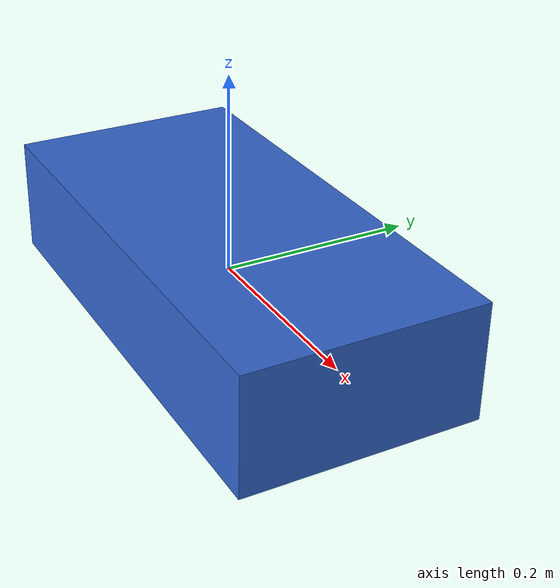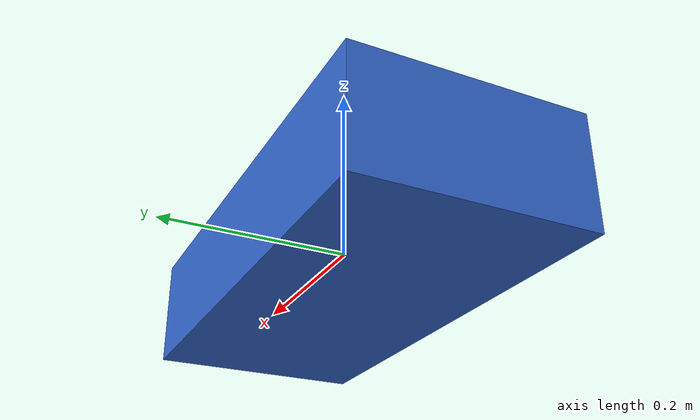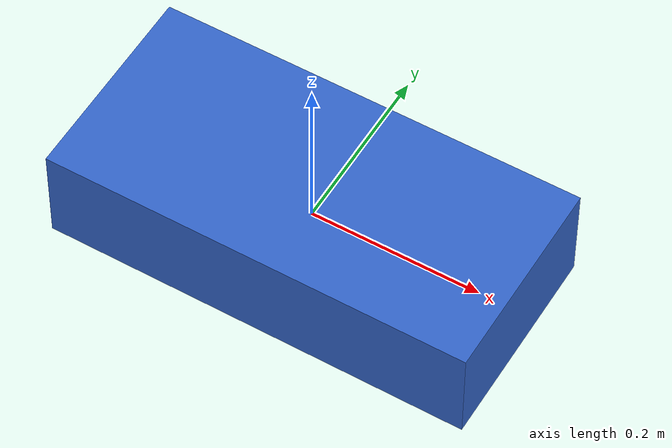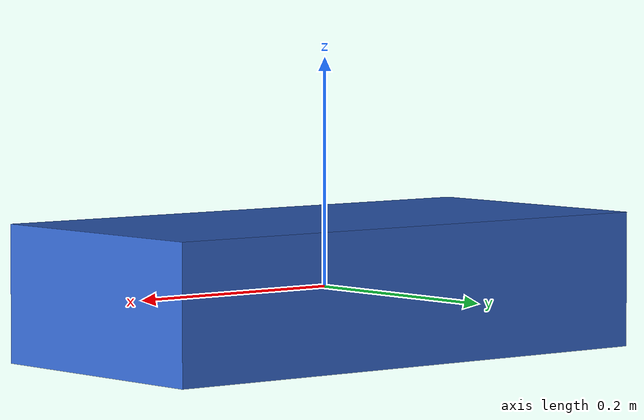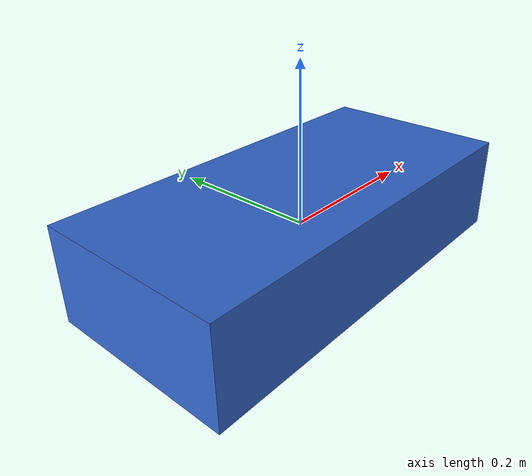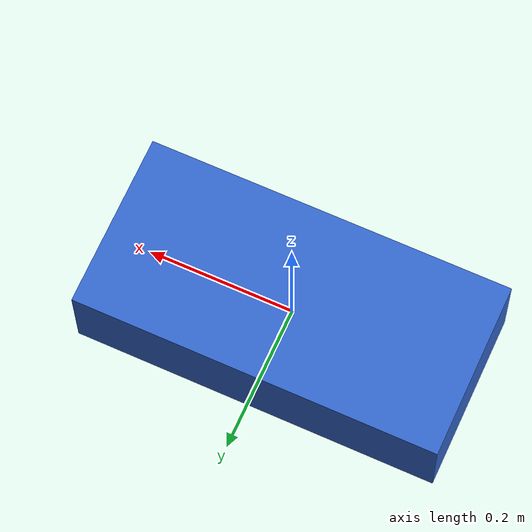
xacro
<?xml version="1.0"?>

<robot
  xmlns:xacro="http://www.ros.org/wiki/xacro"
  name="machine_dog">

  <!-- Robot base coordinate     -->

  <link name="base_link"/>

  <!-- Main body                 -->

  <link name="body_link">

    <visual>

      <origin
        xyz="0 0 0"
        rpy="0 0 0"/>

      <geometry>
        <box size="0.50 0.24 0.12"/>
      </geometry>

      <material name="body_blue">
        <color rgba="0.2 0.4 0.8 1.0"/>
      </material>

    </visual>

    <collision>

      <origin
        xyz="0 0 0"
        rpy="0 0 0"/>

      <geometry>
        <box size="0.50 0.24 0.12"/>
      </geometry>

    </collision>

    <inertial>

      <origin
        xyz="0 0 0"
        rpy="0 0 0"/>

      <mass value="8.0"/>

      <inertia
        ixx="0.048"
        ixy="0.0"
        ixz="0.0"
        iyy="0.1763"
        iyz="0.0"
        izz="0.2051"/>

    </inertial>

  </link>

  <!-- base_link -> body_link    -->

  <joint
    name="base_to_body"
    type="fixed">

    <parent link="base_link"/>

    <child link="body_link"/>

    <origin
      xyz="0 0 0"
      rpy="0 0 0"/>

  </joint>

</robot>
